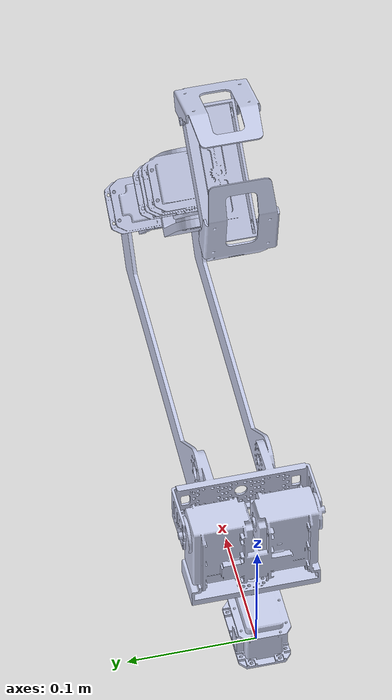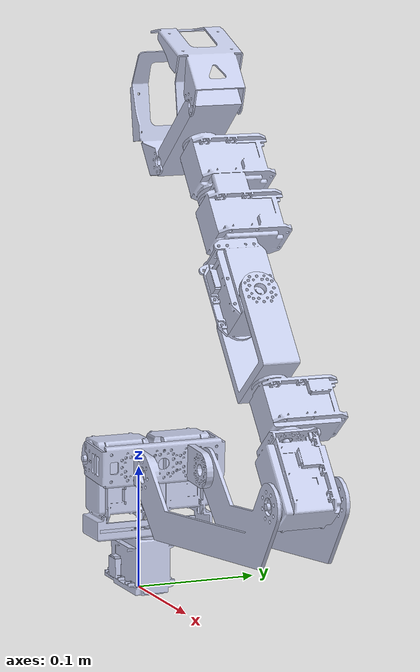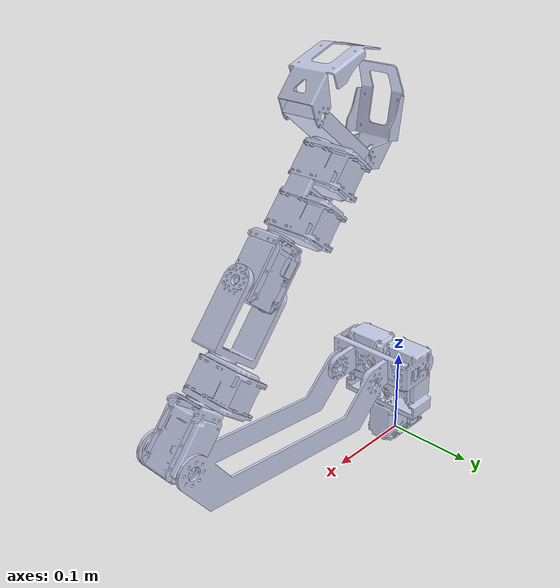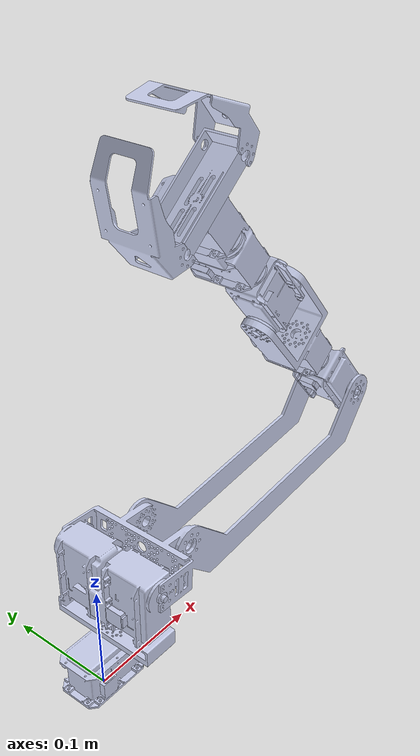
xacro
<?xml version="1.0" encoding="utf-8"?>
<robot xmlns:xacro="http://www.ros.org/wiki/xacro" name="doris_arm_description">
  <xacro:property name="reduction" value="5" />
  <link name="arm_base_link">
    <inertial>
      <origin xyz="0.0032335 -3.6289E-06 0.02346" rpy="0 0 0" />
      <mass value="0.086496" />
      <inertia ixx="0.002" ixy="0.0" ixz="0.0" iyy="0.002" iyz="0.0" izz="0.002" />
    </inertial>
    <visual>
      <origin xyz="0 0 0" rpy="0 0 0" />
      <geometry>
        <mesh filename="package://doris_arm_description/meshes/arm_base_link.STL" />
      </geometry>
      <material name="">
        <color rgba="0.79216 0.81961 0.93333 1" />
      </material>
    </visual>
    <collision>
      <origin xyz="0 0 0" rpy="0 0 0" />
      <geometry>
        <mesh filename="package://doris_arm_description/meshes/arm_base_link.STL" />
      </geometry>
    </collision>
  </link>
  <link name="shoulder_link">
    <inertial>
      <origin xyz="1.80019426116503E-06 0.0469908207821207 1.02798098779305E-05" rpy="0 0 0" />
      <mass value="0.187371975468428" />
      <inertia ixx="0.002" ixy="0.0" ixz="0.0" iyy="0.002" iyz="0.0" izz="0.002" />
    </inertial>
    <visual>
      <origin xyz="0 0 0" rpy="0 0 0" />
      <geometry>
        <mesh filename="package://doris_arm_description/meshes/shoulder_link.STL" />
      </geometry>
      <material name="">
        <color rgba="0.792156862745098 0.819607843137255 0.933333333333333 1" />
      </material>
    </visual>
    <collision>
      <origin xyz="0 0 0" rpy="0 0 0" />
      <geometry>
        <mesh filename="package://doris_arm_description/meshes/shoulder_link.STL" />
      </geometry>
    </collision>
  </link>
  <joint name="shoulder_joint" type="continuous">
    <origin xyz="0.018961 0 0.049" rpy="1.5708 0 0" />
    <parent link="arm_base_link" />
    <child link="shoulder_link" />
    <axis xyz="0 1 0" />
    <limit effort="${8.4*0.2*reduction}" velocity="${6.28/reduction}" />
    <dynamics damping="0.7" friction="1.0"/>
  </joint>
  <link name="forearm_link">
    <inertial>
      <origin xyz="-1.08638707938674E-05 0.145957509942709 0.00428434606455026" rpy="0 0 0" />
      <mass value="0.0731491894717436" />
      <inertia ixx="0.002" ixy="0.0" ixz="0.0" iyy="0.002" iyz="0.0" izz="0.002" />
    </inertial>
    <visual>
      <origin xyz="0 0 0" rpy="0 0 0" />
      <geometry>
        <mesh filename="package://doris_arm_description/meshes/forearm_link.STL" />
      </geometry>
      <material name="">
        <color rgba="0.792156862745098 0.819607843137255 0.933333333333333 1" />
      </material>
    </visual>
    <collision>
      <origin xyz="0 0 0" rpy="0 0 0" />
      <geometry>
        <mesh filename="package://doris_arm_description/meshes/forearm_link.STL" />
      </geometry>
    </collision>
  </link>
  <joint name="forearm_shoulder_joint" type="continuous">
    <origin xyz="0 0.0656 0" rpy="0.93003 1.5708 -0.7" />
    <parent link="shoulder_link" />
    <child link="forearm_link" />
    <axis xyz="1 0 0" />
    <limit effort="${2*8.4*0.2*reduction}" velocity="${6.28/reduction}" />
    <dynamics damping="0.7" friction="1.0"/>
  </joint>
  <link name="elbow_link">
    <inertial>
      <origin xyz="-3.11104449999267E-05 -0.0168263295023695 0.000457294178247414" rpy="0 0 0" />
      <mass value="0.0892046248471317" />
            <inertia ixx="0.002" ixy="0.0" ixz="0.0" iyy="0.002" iyz="0.0" izz="0.002" />

    </inertial>
    <visual>
      <origin xyz="0 0 0" rpy="0 0 0" />
      <geometry>
        <mesh filename="package://doris_arm_description/meshes/elbow_link.STL" />
      </geometry>
      <material name="">
        <color rgba="0.792156862745098 0.819607843137255 0.933333333333333 1" />
      </material>
    </visual>
    <collision>
      <origin xyz="0 0 0" rpy="0 0 0" />
      <geometry>
        <mesh filename="package://doris_arm_description/meshes/elbow_link.STL" />
      </geometry>
    </collision>
  </link>
  <joint name="elbow_joint" type="continuous">
    <origin xyz="0 0.30821 -0.040455" rpy="1.5708 -0.74886 -1.5708" />
    <parent link="forearm_link" />
    <child link="elbow_link" />
    <axis xyz="0 0 1" />
    <limit effort="${8.4*0.2*reduction}" velocity="${6.28/reduction}" />
    <dynamics damping="0.7" friction="1.0"/>
  </joint>
  <link name="roll_link">
    <inertial>
      <origin xyz="1.19120197594746E-08 -0.010083697233814 -0.0945595691856148" rpy="0 0 0" />
      <mass value="0.108644948048519" />
            <inertia ixx="0.002" ixy="0.0" ixz="0.0" iyy="0.002" iyz="0.0" izz="0.002" />

    </inertial>
    <visual>
      <origin xyz="0 0 0" rpy="0 0 0" />
      <geometry>
        <mesh filename="package://doris_arm_description/meshes/roll_link.STL" />
      </geometry>
      <material name="">
        <color rgba="0.792156862745098 0.819607843137255 0.933333333333333 1" />
      </material>
    </visual>
    <collision>
      <origin xyz="0 0 0" rpy="0 0 0" />
      <geometry>
        <mesh filename="package://doris_arm_description/meshes/roll_link.STL" />
      </geometry>
    </collision>
  </link>
  <joint name="roll_joint" type="continuous">
    <origin xyz="0 0 0" rpy="1.5708 0.012731 3.1416" />
    <parent link="elbow_link" />
    <child link="roll_link" />
    <axis xyz="0 0 1" />
    <limit effort="${6.0*0.2*reduction}" velocity="${6.28/reduction}" />
    <dynamics damping="0.7" friction="1.0"/>
  </joint>
  <link name="yaw_link">
    <inertial>
      <origin xyz="4.05516357848967E-05 -0.0160211563366842 -0.000189877443412478" rpy="0 0 0" />
      <mass value="0.0768058991199202" />
            <inertia ixx="0.002" ixy="0.0" ixz="0.0" iyy="0.002" iyz="0.0" izz="0.002" />

    </inertial>
    <visual>
      <origin xyz="0 0 0" rpy="0 0 0" />
      <geometry>
        <mesh filename="package://doris_arm_description/meshes/yaw_link.STL" />
      </geometry>
      <material name="">
        <color rgba="0.792156862745098 0.819607843137255 0.933333333333333 1" />
      </material>
    </visual>
    <collision>
      <origin xyz="0 0 0" rpy="0 0 0" />
      <geometry>
        <mesh filename="package://doris_arm_description/meshes/yaw_link.STL" />
      </geometry>
    </collision>
  </link>
  <joint name="yaw_joint" type="continuous">
    <origin xyz="0 0 -0.166" rpy="1.5708 0 1.5708" />
    <parent link="roll_link" />
    <child link="yaw_link" />
    <axis xyz="0 0 1" />
    <limit effort="${6.0*0.2*reduction}" velocity="${6.28/reduction}" />
    <dynamics damping="0.7" friction="1.0"/>
  </joint>
  <link name="roll_2_link">
    <inertial>
      <origin xyz="3.30999898656703E-07 -0.0146248804164249 0.0456383476057014" rpy="0 0 0" />
      <mass value="0.15161780969895" />
            <inertia ixx="0.002" ixy="0.0" ixz="0.0" iyy="0.002" iyz="0.0" izz="0.002" />

    </inertial>
    <visual>
      <origin xyz="0 0 0" rpy="0 0 0" />
      <geometry>
        <mesh filename="package://doris_arm_description/meshes/roll_2_link.STL" />
      </geometry>
      <material name="">
        <color rgba="0.792156862745098 0.819607843137255 0.933333333333333 1" />
      </material>
    </visual>
    <collision>
      <origin xyz="0 0 0" rpy="0 0 0" />
      <geometry>
        <mesh filename="package://doris_arm_description/meshes/roll_2_link.STL" />
      </geometry>
    </collision>
  </link>
  <joint name="roll_2_joint" type="continuous">
    <origin xyz="0 -0.054822 -0.00015038" rpy="1.3649 1.5708 -0.2119" />
    <parent link="yaw_link" />
    <child link="roll_2_link" />
    <axis xyz="0 0 1" />
    <limit effort="${6.0*0.2*reduction}" velocity="${6.28/reduction}" />
    <dynamics damping="0.7" friction="1.0"/>
  </joint>
  <link name="gripper_link">
    <inertial>
      <origin xyz="0.0230127657229507 0.000126473527769386 0.00158449770655011" rpy="0 0 0" />
      <mass value="0.0174078384350788" />
            <inertia ixx="0.002" ixy="0.0" ixz="0.0" iyy="0.002" iyz="0.0" izz="0.002" />

    </inertial>
    <visual>
      <origin xyz="0 0 0" rpy="0 0 0" />
      <geometry>
        <mesh filename="package://doris_arm_description/meshes/gripper_link.STL" />
      </geometry>
      <material name="">
        <color rgba="0.792156862745098 0.819607843137255 0.933333333333333 1" />
      </material>
    </visual>
    <collision>
      <origin xyz="0 0 0" rpy="0 0 0" />
      <geometry>
        <mesh filename="package://doris_arm_description/meshes/gripper_link.STL" />
      </geometry>
    </collision>
  </link>
  <joint name="gripper_joint" type="fixed">
    <origin xyz="-0.021958 0.00027834 0.10168" rpy="3.1416 0 -0.012731" />
    <parent link="roll_2_link" />
    <child link="gripper_link" />
    <axis xyz="0 0 0" />
  </joint>
  <link name="left_finger_link">
    <inertial>
      <origin xyz="-2.5501E-07 -0.0020883 0.03999" rpy="0 0 0" />
      <mass value="0.0083226" />
            <inertia ixx="0.002" ixy="0.0" ixz="0.0" iyy="0.002" iyz="0.0" izz="0.002" />

    </inertial>
    <visual>
      <origin xyz="0 0 0" rpy="0 0 0" />
      <geometry>
        <mesh filename="package://doris_arm_description/meshes/left_finger_link.STL" />
      </geometry>
      <material name="">
        <color rgba="0.79216 0.81961 0.93333 1" />
      </material>
    </visual>
    <collision>
      <origin xyz="0 0 0" rpy="0 0 0" />
      <geometry>
        <mesh filename="package://doris_arm_description/meshes/left_finger_link.STL" />
      </geometry>
    </collision>
  </link>
  <joint name="left_finger_joint" type="continuous">
    <origin xyz="-0.038057 0 -0.0015128" rpy="2.7793 0 1.5708" />
    <parent link="gripper_link" />
    <child link="left_finger_link" />
    <axis xyz="1 0 0" />
    <limit effort="${6.0*0.2*reduction/2}" velocity="${6.28/reduction}" />
    <dynamics damping="0.7" friction="1.0"/>
  </joint>
  <link name="right_finger_link">
    <inertial>
      <origin xyz="-2.55484871550249E-07 0.0123652457374703 0.0380876079681996" rpy="0 0 0" />
      <mass value="0.00832263335631547" />
            <inertia ixx="0.002" ixy="0.0" ixz="0.0" iyy="0.002" iyz="0.0" izz="0.002" />

    </inertial>
    <visual>
      <origin xyz="0 0 0" rpy="0 0 0" />
      <geometry>
        <mesh filename="package://doris_arm_description/meshes/right_finger_link.STL" />
      </geometry>
      <material name="">
        <color rgba="0.792156862745098 0.819607843137255 0.933333333333333 1" />
      </material>
    </visual>
    <collision>
      <origin xyz="0 0 0" rpy="0 0 0" />
      <geometry>
        <mesh filename="package://doris_arm_description/meshes/right_finger_link.STL" />
      </geometry>
    </collision>
  </link>
  <joint name="right_finger_joint" type="continuous">
    <origin xyz="0.081977 0 -0.0015128" rpy="-3.1378 0 -1.5708" />
    <parent link="gripper_link" />
    <child link="right_finger_link" />
    <axis xyz="-1 0 0" />
    <limit effort="${6.0*0.2*reduction/2}" velocity="${6.28/reduction}" />
    <dynamics damping="0.7" friction="1.0"/>
  </joint>
</robot>
